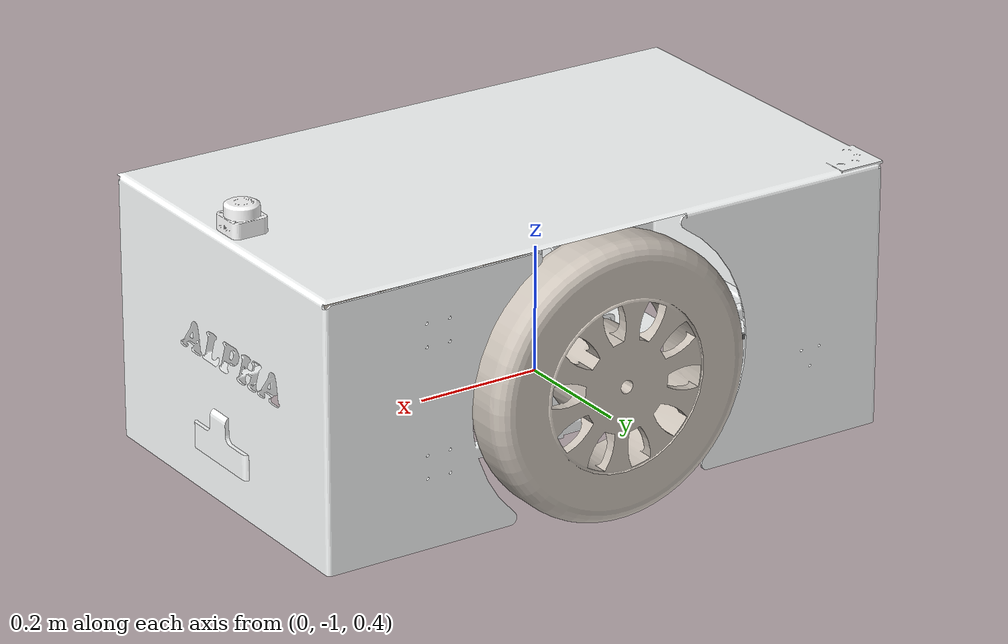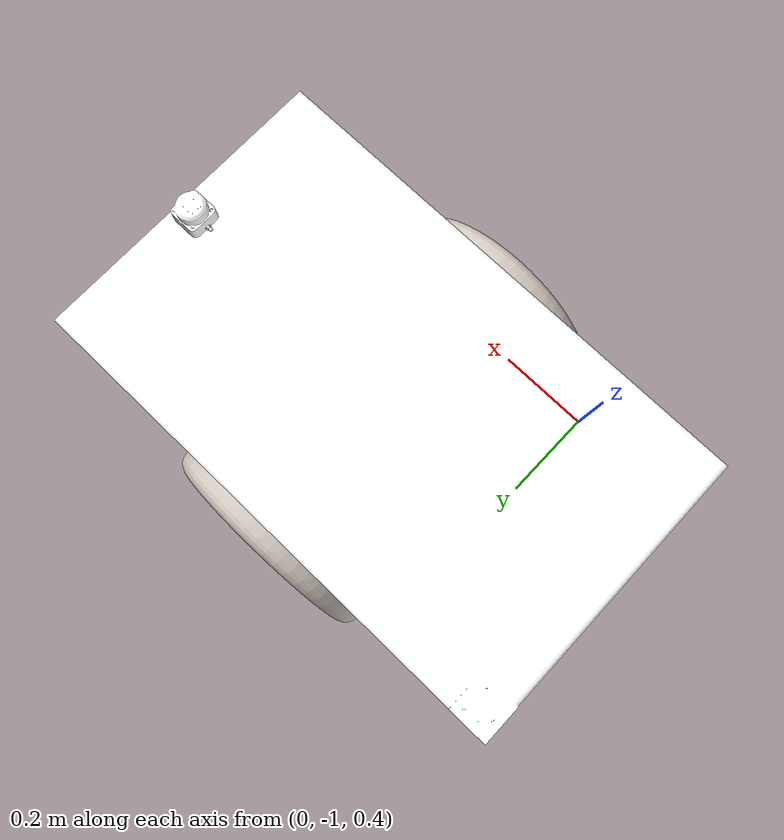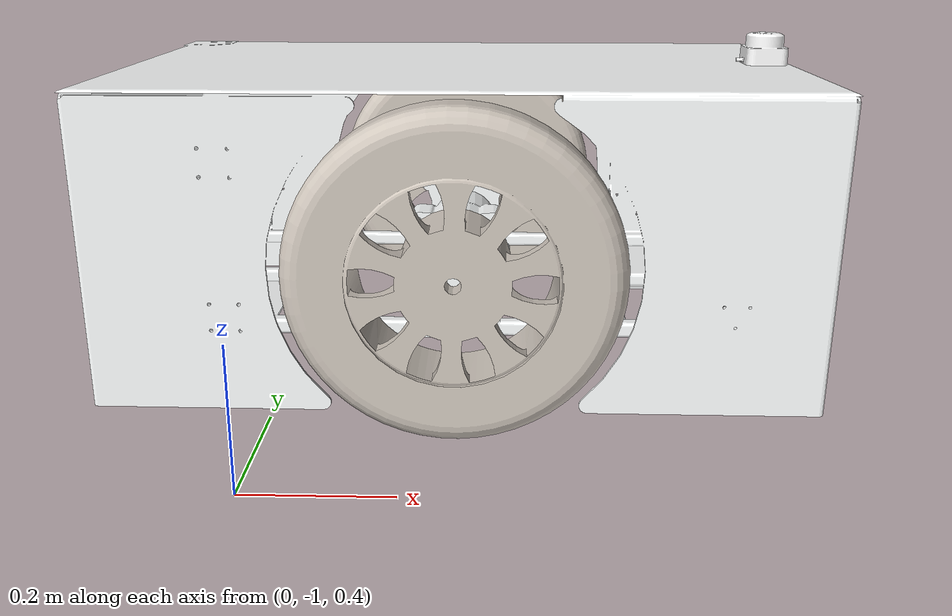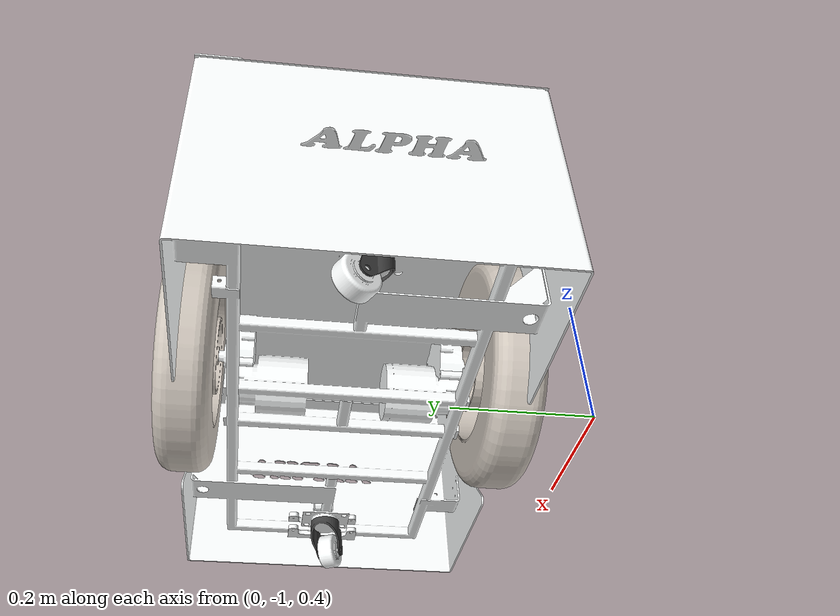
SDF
<sdf version='1.11'>
  <model name='alpha_bot'>
    <link name='dummy_link'>
      <inertial>
        <pose>0.27402516049845022 0.64321429403565711 0.68299945133037931 0 0 0</pose>
        <mass>12.017250000000001</mass>
        <inertia>
          <ixx>0.50337368309714492</ixx>
          <ixy>0.086641797500942364</ixy>
          <ixz>0.0081043693040649956</ixz>
          <iyy>0.45961050542607401</iyy>
          <iyz>-0.018816415173981579</iyz>
          <izz>0.57360514180921207</izz>
        </inertia>
      </inertial>
      <collision name='dummy_link_fixed_joint_lump__base_link_collision'>
        <pose>0 0 0 0 0 0</pose>
        <geometry>
          <mesh>
            <scale>1 1 1</scale>
            <uri>model://alpha_bot/meshes/base_link.STL</uri>
          </mesh>
        </geometry>
      </collision>
      <collision name='dummy_link_fixed_joint_lump__camera_link_collision_1'>
        <pose>0.27827000000000002 -0.37358999999999998 0.67876999999999998 0 0 0</pose>
        <geometry>
          <mesh>
            <scale>1 1 1</scale>
            <uri>model://alpha_bot/meshes/camera_link.STL</uri>
          </mesh>
        </geometry>
      </collision>
      <collision name='dummy_link_fixed_joint_lump__lidar_link_collision_2'>
        <pose>0.68427000000000004 -0.68284 0.89098999999999995 1.5708 -5.5511151231257827e-17 1.5708</pose>
        <geometry>
          <mesh>
            <scale>1 1 1</scale>
            <uri>model://alpha_bot/meshes/lidar_link.STL</uri>
          </mesh>
        </geometry>
      </collision>
      <visual name='dummy_link_fixed_joint_lump__base_link_visual'>
        <pose>0 0 0 0 0 0</pose>
        <geometry>
          <mesh>
            <scale>1 1 1</scale>
            <uri>model://alpha_bot/meshes/base_link.STL</uri>
          </mesh>
        </geometry>
        <material>
          <diffuse>0.990199983 1 1 1</diffuse>
          <ambient>0.990199983 1 1 1</ambient>
        </material>
      </visual>
      <visual name='dummy_link_fixed_joint_lump__camera_link_visual_1'>
        <pose>0.27827000000000002 -0.37358999999999998 0.67876999999999998 0 0 0</pose>
        <geometry>
          <mesh>
            <scale>1 1 1</scale>
            <uri>model://alpha_bot/meshes/camera_link.STL</uri>
          </mesh>
        </geometry>
        <material>
          <diffuse>0.990199983 1 1 1</diffuse>
          <ambient>0.990199983 1 1 1</ambient>
        </material>
      </visual>
      <visual name='dummy_link_fixed_joint_lump__lidar_link_visual_2'>
        <pose>0.68427000000000004 -0.68284 0.89098999999999995 1.5708 -5.5511151231257827e-17 1.5708</pose>
        <geometry>
          <mesh>
            <scale>1 1 1</scale>
            <uri>model://alpha_bot/meshes/lidar_link.STL</uri>
          </mesh>
        </geometry>
        <material>
          <diffuse>1 1 1 1</diffuse>
          <ambient>1 1 1 1</ambient>
        </material>
      </visual>
    </link>
    <joint name='back_castor_joint' type='revolute'>
      <pose relative_to='dummy_link'>-0.10911 -0.68498999999999999 0.49598999999999999 3.1415853071795872 -2.1175823681357508e-22 -2.6027999999999998</pose>
      <parent>dummy_link</parent>
      <child>back_castor</child>
      <axis>
        <xyz>0 0 1</xyz>
        <limit>
          <lower>-inf</lower>
          <upper>inf</upper>
        </limit>
        <dynamics>
          <spring_reference>0</spring_reference>
          <spring_stiffness>0</spring_stiffness>
        </dynamics>
      </axis>
    </joint>
    <link name='back_castor'>
      <pose relative_to='back_castor_joint'>0 0 0 0 0 0</pose>
      <inertial>
        <pose>-0.00015456000000000001 0.0068509 -0.038698999999999997 0 0 0</pose>
        <mass>0.016198000000000001</mass>
        <inertia>
          <ixx>9.6662999999999993e-06</ixx>
          <ixy>-6.1491000000000004e-08</ixy>
          <ixz>-4.7184000000000001e-08</ixz>
          <iyy>1.2353e-05</iyy>
          <iyz>-3.0290999999999999e-06</iyz>
          <izz>1.4421e-05</izz>
        </inertia>
      </inertial>
      <collision name='back_castor_collision'>
        <pose>0 0 0 0 0 0</pose>
        <geometry>
          <mesh>
            <scale>1 1 1</scale>
            <uri>model://alpha_bot/meshes/back_castor.STL</uri>
          </mesh>
        </geometry>
      </collision>
      <visual name='back_castor_visual'>
        <pose>0 0 0 0 0 0</pose>
        <geometry>
          <mesh>
            <scale>1 1 1</scale>
            <uri>model://alpha_bot/meshes/back_castor.STL</uri>
          </mesh>
        </geometry>
        <material>
          <diffuse>0.25 0.25 0.25 1</diffuse>
          <ambient>0.25 0.25 0.25 1</ambient>
        </material>
      </visual>
    </link>
    <joint name='back_wheel_joint' type='revolute'>
      <pose relative_to='back_castor'>0 0.030946999999999999 -0.012500000000000001 0 1.2748999999999999 -1.5707999999999998</pose>
      <parent>back_castor</parent>
      <child>back_wheel</child>
      <axis>
        <xyz>0 1 0</xyz>
        <limit>
          <lower>-inf</lower>
          <upper>inf</upper>
        </limit>
        <dynamics>
          <spring_reference>0</spring_reference>
          <spring_stiffness>0</spring_stiffness>
        </dynamics>
      </axis>
    </joint>
    <link name='back_wheel'>
      <pose relative_to='back_wheel_joint'>0 0 0 0 0 0</pose>
      <inertial>
        <pose>-1.1102e-16 0.0015 -1.1102e-16 0 0 0</pose>
        <mass>0.10036</mass>
        <inertia>
          <ixx>3.4167e-05</ixx>
          <ixy>-5.5903999999999999e-20</ixy>
          <ixz>2.9645999999999999e-21</ixz>
          <iyy>5.2133999999999999e-05</iyy>
          <iyz>-5.7598e-20</iyz>
          <izz>3.4167e-05</izz>
        </inertia>
      </inertial>
      <collision name='back_wheel_collision'>
        <pose>0 0 0 0 0 0</pose>
        <geometry>
          <mesh>
            <scale>1 1 1</scale>
            <uri>model://alpha_bot/meshes/back_wheel.STL</uri>
          </mesh>
        </geometry>
      </collision>
      <visual name='back_wheel_visual'>
        <pose>0 0 0 0 0 0</pose>
        <geometry>
          <mesh>
            <scale>1 1 1</scale>
            <uri>model://alpha_bot/meshes/back_wheel.STL</uri>
          </mesh>
        </geometry>
        <material>
          <diffuse>0.990199983 1 1 1</diffuse>
          <ambient>0.990199983 1 1 1</ambient>
        </material>
      </visual>
    </link>
    <joint name='front_castor_joint' type='revolute'>
      <pose relative_to='dummy_link'>0.64739000000000002 -0.68498999999999999 0.49598999999999999 -3.1415853071795872 0 1.1185</pose>
      <parent>dummy_link</parent>
      <child>front_castor</child>
      <axis>
        <xyz>0 0 1</xyz>
        <limit>
          <lower>-inf</lower>
          <upper>inf</upper>
        </limit>
        <dynamics>
          <spring_reference>0</spring_reference>
          <spring_stiffness>0</spring_stiffness>
        </dynamics>
      </axis>
    </joint>
    <link name='front_castor'>
      <pose relative_to='front_castor_joint'>0 0 0 0 0 0</pose>
      <inertial>
        <pose>-0.00015453999999999999 0.0068509 -0.038698999999999997 0 0 0</pose>
        <mass>0.016198000000000001</mass>
        <inertia>
          <ixx>9.6662999999999993e-06</ixx>
          <ixy>-6.1483999999999997e-08</ixy>
          <ixz>-4.7186999999999998e-08</ixz>
          <iyy>1.2353e-05</iyy>
          <iyz>-3.0290999999999999e-06</iyz>
          <izz>1.4421e-05</izz>
        </inertia>
      </inertial>
      <collision name='front_castor_collision'>
        <pose>0 0 0 0 0 0</pose>
        <geometry>
          <mesh>
            <scale>1 1 1</scale>
            <uri>model://alpha_bot/meshes/front_castor.STL</uri>
          </mesh>
        </geometry>
      </collision>
      <visual name='front_castor_visual'>
        <pose>0 0 0 0 0 0</pose>
        <geometry>
          <mesh>
            <scale>1 1 1</scale>
            <uri>model://alpha_bot/meshes/front_castor.STL</uri>
          </mesh>
        </geometry>
        <material>
          <diffuse>0.25 0.25 0.25 1</diffuse>
          <ambient>0.25 0.25 0.25 1</ambient>
        </material>
      </visual>
    </link>
    <joint name='front_wheel_joint' type='revolute'>
      <pose relative_to='front_castor'>0 0.030946999999999999 -0.012500000000000001 -1.4239213960193166e-17 0.22578999999999999 -1.5708</pose>
      <parent>front_castor</parent>
      <child>front_wheel</child>
      <axis>
        <xyz>0 1 0</xyz>
        <limit>
          <lower>-inf</lower>
          <upper>inf</upper>
        </limit>
        <dynamics>
          <spring_reference>0</spring_reference>
          <spring_stiffness>0</spring_stiffness>
        </dynamics>
      </axis>
    </joint>
    <link name='front_wheel'>
      <pose relative_to='front_wheel_joint'>0 0 0 0 0 0</pose>
      <inertial>
        <pose>1.1102e-16 0.00125 1.1102e-16 0 0 0</pose>
        <mass>0.10036</mass>
        <inertia>
          <ixx>3.4167e-05</ixx>
          <ixy>2.0329000000000001e-20</ixy>
          <ixz>0</ixz>
          <iyy>5.2133999999999999e-05</iyy>
          <iyz>1.9057999999999999e-21</iyz>
          <izz>3.4167e-05</izz>
        </inertia>
      </inertial>
      <collision name='front_wheel_collision'>
        <pose>0 0 0 0 0 0</pose>
        <geometry>
          <mesh>
            <scale>1 1 1</scale>
            <uri>model://alpha_bot/meshes/front_wheel.STL</uri>
          </mesh>
        </geometry>
      </collision>
      <visual name='front_wheel_visual'>
        <pose>0 0 0 0 0 0</pose>
        <geometry>
          <mesh>
            <scale>1 1 1</scale>
            <uri>model://alpha_bot/meshes/front_wheel.STL</uri>
          </mesh>
        </geometry>
        <material>
          <diffuse>0.990199983 1 1 1</diffuse>
          <ambient>0.990199983 1 1 1</ambient>
        </material>
      </visual>
    </link>
    <joint name='left_wheel_joint' type='revolute'>
      <pose relative_to='dummy_link'>0.26913999999999999 -0.37358999999999998 0.67469000000000001 -3.1415853071795872 -0.42107999999999995 0</pose>
      <parent>dummy_link</parent>
      <child>left_wheel</child>
      <axis>
        <xyz>0 1 0</xyz>
        <limit>
          <lower>-inf</lower>
          <upper>inf</upper>
        </limit>
        <dynamics>
          <spring_reference>0</spring_reference>
          <spring_stiffness>0</spring_stiffness>
        </dynamics>
      </axis>
    </joint>
    <link name='left_wheel'>
      <pose relative_to='left_wheel_joint'>0 0 0 0 0 0</pose>
      <inertial>
        <pose>1.1102e-16 0.042183999999999999 -1.1102e-16 0 0 0</pose>
        <mass>7.9936999999999996</mass>
        <inertia>
          <ixx>0.10799</ixx>
          <ixy>-1.1275e-18</ixy>
          <ixz>1.0408e-17</ixz>
          <iyy>0.20608000000000001</iyy>
          <iyz>4.0008000000000003e-18</iyz>
          <izz>0.10799</izz>
        </inertia>
      </inertial>
      <collision name='left_wheel_collision'>
        <pose>0 0 0 0 0 0</pose>
        <geometry>
          <mesh>
            <scale>1 1 1</scale>
            <uri>model://alpha_bot/meshes/left_wheel.STL</uri>
          </mesh>
        </geometry>
      </collision>
      <visual name='left_wheel_visual'>
        <pose>0 0 0 0 0 0</pose>
        <geometry>
          <mesh>
            <scale>1 1 1</scale>
            <uri>model://alpha_bot/meshes/left_wheel.STL</uri>
          </mesh>
        </geometry>
        <material>
          <diffuse>0.808824956 0.774512529 0.735300064 1</diffuse>
          <ambient>0.808824956 0.774512529 0.735300064 1</ambient>
        </material>
      </visual>
    </link>
    <joint name='right_wheel_joint' type='revolute'>
      <pose relative_to='dummy_link'>0.26915 -0.90749000000000002 0.67469000000000001 3.1415853071795872 1.5447999999999995 3.1415853071795872</pose>
      <parent>dummy_link</parent>
      <child>right_wheel</child>
      <axis>
        <xyz>0 1 0</xyz>
        <limit>
          <lower>-inf</lower>
          <upper>inf</upper>
        </limit>
        <dynamics>
          <spring_reference>0</spring_reference>
          <spring_stiffness>0</spring_stiffness>
        </dynamics>
      </axis>
    </joint>
    <link name='right_wheel'>
      <pose relative_to='right_wheel_joint'>0 0 0 0 0 0</pose>
      <inertial>
        <pose>-1.1102e-16 -0.046716000000000001 1.1102e-16 0 0 0</pose>
        <mass>7.9936999999999996</mass>
        <inertia>
          <ixx>0.10799</ixx>
          <ixy>1.3721e-18</ixy>
          <ixz>-2.6020999999999998e-18</ixz>
          <iyy>0.20608000000000001</iyy>
          <iyz>4.8091999999999998e-18</iyz>
          <izz>0.10799</izz>
        </inertia>
      </inertial>
      <collision name='right_wheel_collision'>
        <pose>0 0 0 0 0 0</pose>
        <geometry>
          <mesh>
            <scale>1 1 1</scale>
            <uri>model://alpha_bot/meshes/right_wheel.STL</uri>
          </mesh>
        </geometry>
      </collision>
      <visual name='right_wheel_visual'>
        <pose>0 0 0 0 0 0</pose>
        <geometry>
          <mesh>
            <scale>1 1 1</scale>
            <uri>model://alpha_bot/meshes/right_wheel.STL</uri>
          </mesh>
        </geometry>
        <material>
          <diffuse>0.808824956 0.774512529 0.735300064 1</diffuse>
          <ambient>0.808824956 0.774512529 0.735300064 1</ambient>
        </material>
      </visual>
    </link>
    <frame name='camera_joint' attached_to='base_link'>
      <pose>0.27827000000000002 -0.37358999999999998 0.67876999999999998 0 0 0</pose>
    </frame>
    <frame name='camera_link' attached_to='camera_joint'>
      <pose>0 0 0 0 0 0</pose>
    </frame>
    <frame name='lidar_joint' attached_to='base_link'>
      <pose>0.68427000000000004 -0.68284 0.89098999999999995 1.5708 -5.5511151231257827e-17 1.5708</pose>
    </frame>
    <frame name='lidar_link' attached_to='lidar_joint'>
      <pose>0 0 0 0 0 0</pose>
    </frame>
    <frame name='dummy_joint' attached_to='dummy_link'>
      <pose>0 0 0 0 0 0</pose>
    </frame>
    <frame name='base_link' attached_to='dummy_joint'>
      <pose>0 0 0 0 0 0</pose>
    </frame>
  </model>
</sdf>
